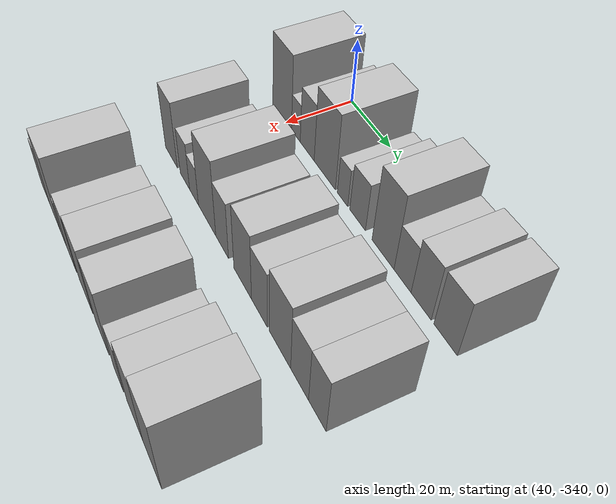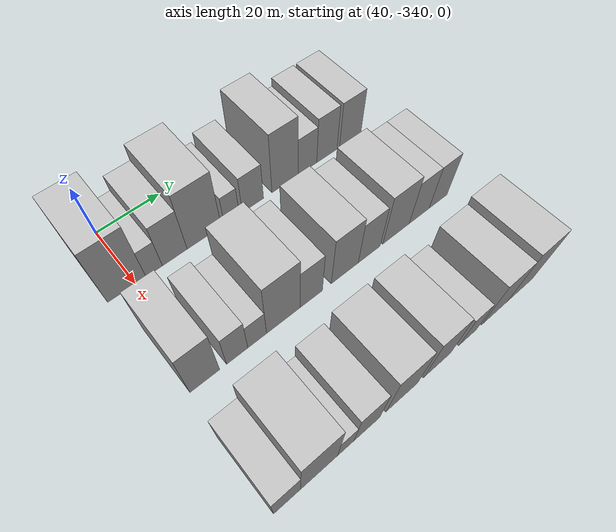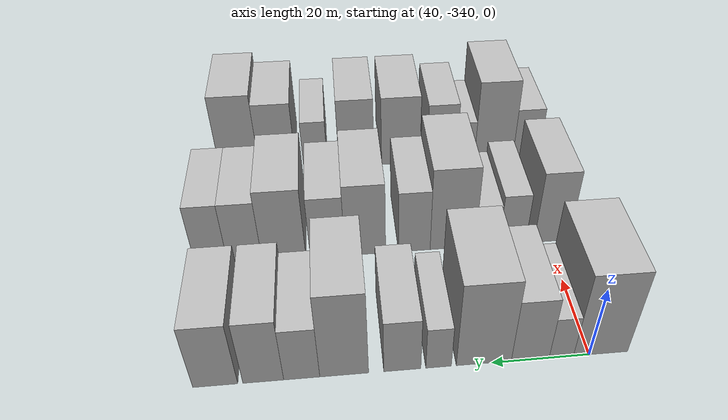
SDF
<sdf version="1.6">
 <world name="default">
  <model name="building_1">
   <static>1</static>
   <pose>50.0000 -342.3890 0 0.000000 0.000000 0.000000</pose>
   <link name="link">
    <pose>0 0 12.00 0 0 0</pose>
    <collision name="collision"><geometry><box><size>20.0000 11.2219 24.0000</size></box></geometry></collision>
    <visual name="visual">
     <cast_shadows>0</cast_shadows>
     <geometry><box><size>20.0000 11.2219 24.0000</size></box></geometry>
     <material>
      <script>
       <uri>model://HANNAS_wall/materials/scripts</uri>
       <uri>model://HANNAS_wall/materials/textures</uri>
       <name>vrc/HANNAS_wall</name>
      </script>
     </material>
    </visual>
   </link>
  </model>
  <model name="building_2">
   <static>1</static>
   <pose>50.0000 -334.2786 0 0.000000 0.000000 0.000000</pose>
   <link name="link">
    <pose>0 0 6.00 0 0 0</pose>
    <collision name="collision"><geometry><box><size>20.0000 4.9989 12.0000</size></box></geometry></collision>
    <visual name="visual">
     <cast_shadows>0</cast_shadows>
     <geometry><box><size>20.0000 4.9989 12.0000</size></box></geometry>
     <material>
      <script>
       <uri>model://HANNAS_wall/materials/scripts</uri>
       <uri>model://HANNAS_wall/materials/textures</uri>
       <name>vrc/HANNAS_wall</name>
      </script>
     </material>
    </visual>
   </link>
  </model>
  <model name="building_3">
   <static>1</static>
   <pose>50.0000 -327.9115 0 0.000000 0.000000 0.000000</pose>
   <link name="link">
    <pose>0 0 9.00 0 0 0</pose>
    <collision name="collision"><geometry><box><size>20.0000 7.7354 18.0000</size></box></geometry></collision>
    <visual name="visual">
     <cast_shadows>0</cast_shadows>
     <geometry><box><size>20.0000 7.7354 18.0000</size></box></geometry>
     <material>
      <script>
       <uri>model://HANNAS_wall/materials/scripts</uri>
       <uri>model://HANNAS_wall/materials/textures</uri>
       <name>vrc/HANNAS_wall</name>
      </script>
     </material>
    </visual>
   </link>
  </model>
  <model name="building_4">
   <static>1</static>
   <pose>50.0000 -318.4822 0 0.000000 0.000000 0.000000</pose>
   <link name="link">
    <pose>0 0 12.00 0 0 0</pose>
    <collision name="collision"><geometry><box><size>20.0000 11.1232 24.0000</size></box></geometry></collision>
    <visual name="visual">
     <cast_shadows>0</cast_shadows>
     <geometry><box><size>20.0000 11.1232 24.0000</size></box></geometry>
     <material>
      <script>
       <uri>model://HANNAS_wall/materials/scripts</uri>
       <uri>model://HANNAS_wall/materials/textures</uri>
       <name>vrc/HANNAS_wall</name>
      </script>
     </material>
    </visual>
   </link>
  </model>
  <model name="building_5">
   <static>1</static>
   <pose>50.0000 -309.3648 0 0.000000 0.000000 0.000000</pose>
   <link name="link">
    <pose>0 0 6.00 0 0 0</pose>
    <collision name="collision"><geometry><box><size>20.0000 5.1116 12.0000</size></box></geometry></collision>
    <visual name="visual">
     <cast_shadows>0</cast_shadows>
     <geometry><box><size>20.0000 5.1116 12.0000</size></box></geometry>
     <material>
      <script>
       <uri>model://HANNAS_wall/materials/scripts</uri>
       <uri>model://HANNAS_wall/materials/textures</uri>
       <name>vrc/HANNAS_wall</name>
      </script>
     </material>
    </visual>
   </link>
  </model>
  <model name="building_6">
   <static>1</static>
   <pose>50.0000 -302.1212 0 0.000000 0.000000 0.000000</pose>
   <link name="link">
    <pose>0 0 7.50 0 0 0</pose>
    <collision name="collision"><geometry><box><size>20.0000 7.3756 15.0000</size></box></geometry></collision>
    <visual name="visual">
     <cast_shadows>0</cast_shadows>
     <geometry><box><size>20.0000 7.3756 15.0000</size></box></geometry>
     <material>
      <script>
       <uri>model://HANNAS_wall/materials/scripts</uri>
       <uri>model://HANNAS_wall/materials/textures</uri>
       <name>vrc/HANNAS_wall</name>
      </script>
     </material>
    </visual>
   </link>
  </model>
  <model name="building_7">
   <static>1</static>
   <pose>50.0000 -290.6306 0 0.000000 0.000000 0.000000</pose>
   <link name="link">
    <pose>0 0 12.00 0 0 0</pose>
    <collision name="collision"><geometry><box><size>20.0000 9.6056 24.0000</size></box></geometry></collision>
    <visual name="visual">
     <cast_shadows>0</cast_shadows>
     <geometry><box><size>20.0000 9.6056 24.0000</size></box></geometry>
     <material>
      <script>
       <uri>model://HANNAS_wall/materials/scripts</uri>
       <uri>model://HANNAS_wall/materials/textures</uri>
       <name>vrc/HANNAS_wall</name>
      </script>
     </material>
    </visual>
   </link>
  </model>
  <model name="building_8">
   <static>1</static>
   <pose>50.0000 -282.3117 0 0.000000 0.000000 0.000000</pose>
   <link name="link">
    <pose>0 0 7.50 0 0 0</pose>
    <collision name="collision"><geometry><box><size>20.0000 7.0321 15.0000</size></box></geometry></collision>
    <visual name="visual">
     <cast_shadows>0</cast_shadows>
     <geometry><box><size>20.0000 7.0321 15.0000</size></box></geometry>
     <material>
      <script>
       <uri>model://HANNAS_wall/materials/scripts</uri>
       <uri>model://HANNAS_wall/materials/textures</uri>
       <name>vrc/HANNAS_wall</name>
      </script>
     </material>
    </visual>
   </link>
  </model>
  <model name="building_9">
   <static>1</static>
   <pose>50.0000 -274.8525 0 0.000000 0.000000 0.000000</pose>
   <link name="link">
    <pose>0 0 9.00 0 0 0</pose>
    <collision name="collision"><geometry><box><size>20.0000 7.8862 18.0000</size></box></geometry></collision>
    <visual name="visual">
     <cast_shadows>0</cast_shadows>
     <geometry><box><size>20.0000 7.8862 18.0000</size></box></geometry>
     <material>
      <script>
       <uri>model://HANNAS_wall/materials/scripts</uri>
       <uri>model://HANNAS_wall/materials/textures</uri>
       <name>vrc/HANNAS_wall</name>
      </script>
     </material>
    </visual>
   </link>
  </model>
  <model name="building_10">
   <static>1</static>
   <pose>50.0000 -265.6022 0 0.000000 0.000000 0.000000</pose>
   <link name="link">
    <pose>0 0 9.00 0 0 0</pose>
    <collision name="collision"><geometry><box><size>20.0000 8.6145 18.0000</size></box></geometry></collision>
    <visual name="visual">
     <cast_shadows>0</cast_shadows>
     <geometry><box><size>20.0000 8.6145 18.0000</size></box></geometry>
     <material>
      <script>
       <uri>model://HANNAS_wall/materials/scripts</uri>
       <uri>model://HANNAS_wall/materials/textures</uri>
       <name>vrc/HANNAS_wall</name>
      </script>
     </material>
    </visual>
   </link>
  </model>
  <model name="building_81">
   <static>1</static>
   <pose>82.0000 -340.7954 0 0.000000 0.000000 0.000000</pose>
   <link name="link">
    <pose>0 0 10.50 0 0 0</pose>
    <collision name="collision"><geometry><box><size>20.0000 8.4092 21.0000</size></box></geometry></collision>
    <visual name="visual">
     <cast_shadows>0</cast_shadows>
     <geometry><box><size>20.0000 8.4092 21.0000</size></box></geometry>
     <material>
      <script>
       <uri>model://HANNAS_wall/materials/scripts</uri>
       <uri>model://HANNAS_wall/materials/textures</uri>
       <name>vrc/HANNAS_wall</name>
      </script>
     </material>
    </visual>
   </link>
  </model>
  <model name="building_82">
   <static>1</static>
   <pose>82.0000 -331.4395 0 0.000000 0.000000 0.000000</pose>
   <link name="link">
    <pose>0 0 7.50 0 0 0</pose>
    <collision name="collision"><geometry><box><size>20.0000 6.3026 15.0000</size></box></geometry></collision>
    <visual name="visual">
     <cast_shadows>0</cast_shadows>
     <geometry><box><size>20.0000 6.3026 15.0000</size></box></geometry>
     <material>
      <script>
       <uri>model://HANNAS_wall/materials/scripts</uri>
       <uri>model://HANNAS_wall/materials/textures</uri>
       <name>vrc/HANNAS_wall</name>
      </script>
     </material>
    </visual>
   </link>
  </model>
  <model name="building_83">
   <static>1</static>
   <pose>82.0000 -325.4299 0 0.000000 0.000000 0.000000</pose>
   <link name="link">
    <pose>0 0 6.00 0 0 0</pose>
    <collision name="collision"><geometry><box><size>20.0000 5.7168 12.0000</size></box></geometry></collision>
    <visual name="visual">
     <cast_shadows>0</cast_shadows>
     <geometry><box><size>20.0000 5.7168 12.0000</size></box></geometry>
     <material>
      <script>
       <uri>model://HANNAS_wall/materials/scripts</uri>
       <uri>model://HANNAS_wall/materials/textures</uri>
       <name>vrc/HANNAS_wall</name>
      </script>
     </material>
    </visual>
   </link>
  </model>
  <model name="building_84">
   <static>1</static>
   <pose>82.0000 -317.2761 0 0.000000 0.000000 0.000000</pose>
   <link name="link">
    <pose>0 0 12.00 0 0 0</pose>
    <collision name="collision"><geometry><box><size>20.0000 10.5909 24.0000</size></box></geometry></collision>
    <visual name="visual">
     <cast_shadows>0</cast_shadows>
     <geometry><box><size>20.0000 10.5909 24.0000</size></box></geometry>
     <material>
      <script>
       <uri>model://HANNAS_wall/materials/scripts</uri>
       <uri>model://HANNAS_wall/materials/textures</uri>
       <name>vrc/HANNAS_wall</name>
      </script>
     </material>
    </visual>
   </link>
  </model>
  <model name="building_85">
   <static>1</static>
   <pose>82.0000 -308.2951 0 0.000000 0.000000 0.000000</pose>
   <link name="link">
    <pose>0 0 9.00 0 0 0</pose>
    <collision name="collision"><geometry><box><size>20.0000 7.3710 18.0000</size></box></geometry></collision>
    <visual name="visual">
     <cast_shadows>0</cast_shadows>
     <geometry><box><size>20.0000 7.3710 18.0000</size></box></geometry>
     <material>
      <script>
       <uri>model://HANNAS_wall/materials/scripts</uri>
       <uri>model://HANNAS_wall/materials/textures</uri>
       <name>vrc/HANNAS_wall</name>
      </script>
     </material>
    </visual>
   </link>
  </model>
  <model name="building_86">
   <static>1</static>
   <pose>82.0000 -296.9072 0 0.000000 0.000000 0.000000</pose>
   <link name="link">
    <pose>0 0 10.50 0 0 0</pose>
    <collision name="collision"><geometry><box><size>20.0000 9.4048 21.0000</size></box></geometry></collision>
    <visual name="visual">
     <cast_shadows>0</cast_shadows>
     <geometry><box><size>20.0000 9.4048 21.0000</size></box></geometry>
     <material>
      <script>
       <uri>model://HANNAS_wall/materials/scripts</uri>
       <uri>model://HANNAS_wall/materials/textures</uri>
       <name>vrc/HANNAS_wall</name>
      </script>
     </material>
    </visual>
   </link>
  </model>
  <model name="building_87">
   <static>1</static>
   <pose>82.0000 -288.2437 0 0.000000 0.000000 0.000000</pose>
   <link name="link">
    <pose>0 0 9.00 0 0 0</pose>
    <collision name="collision"><geometry><box><size>20.0000 7.9222 18.0000</size></box></geometry></collision>
    <visual name="visual">
     <cast_shadows>0</cast_shadows>
     <geometry><box><size>20.0000 7.9222 18.0000</size></box></geometry>
     <material>
      <script>
       <uri>model://HANNAS_wall/materials/scripts</uri>
       <uri>model://HANNAS_wall/materials/textures</uri>
       <name>vrc/HANNAS_wall</name>
      </script>
     </material>
    </visual>
   </link>
  </model>
  <model name="building_88">
   <static>1</static>
   <pose>82.0000 -278.2958 0 0.000000 0.000000 0.000000</pose>
   <link name="link">
    <pose>0 0 10.50 0 0 0</pose>
    <collision name="collision"><geometry><box><size>20.0000 9.9735 21.0000</size></box></geometry></collision>
    <visual name="visual">
     <cast_shadows>0</cast_shadows>
     <geometry><box><size>20.0000 9.9735 21.0000</size></box></geometry>
     <material>
      <script>
       <uri>model://HANNAS_wall/materials/scripts</uri>
       <uri>model://HANNAS_wall/materials/textures</uri>
       <name>vrc/HANNAS_wall</name>
      </script>
     </material>
    </visual>
   </link>
  </model>
  <model name="building_89">
   <static>1</static>
   <pose>82.0000 -269.4172 0 0.000000 0.000000 0.000000</pose>
   <link name="link">
    <pose>0 0 9.00 0 0 0</pose>
    <collision name="collision"><geometry><box><size>20.0000 7.7837 18.0000</size></box></geometry></collision>
    <visual name="visual">
     <cast_shadows>0</cast_shadows>
     <geometry><box><size>20.0000 7.7837 18.0000</size></box></geometry>
     <material>
      <script>
       <uri>model://HANNAS_wall/materials/scripts</uri>
       <uri>model://HANNAS_wall/materials/textures</uri>
       <name>vrc/HANNAS_wall</name>
      </script>
     </material>
    </visual>
   </link>
  </model>
  <model name="building_90">
   <static>1</static>
   <pose>82.0000 -261.8972 0 0.000000 0.000000 0.000000</pose>
   <link name="link">
    <pose>0 0 9.00 0 0 0</pose>
    <collision name="collision"><geometry><box><size>20.0000 7.2563 18.0000</size></box></geometry></collision>
    <visual name="visual">
     <cast_shadows>0</cast_shadows>
     <geometry><box><size>20.0000 7.2563 18.0000</size></box></geometry>
     <material>
      <script>
       <uri>model://HANNAS_wall/materials/scripts</uri>
       <uri>model://HANNAS_wall/materials/textures</uri>
       <name>vrc/HANNAS_wall</name>
      </script>
     </material>
    </visual>
   </link>
  </model>
  <model name="building_157">
   <static>1</static>
   <pose>114.0000 -342.3721 0 0.000000 0.000000 0.000000</pose>
   <link name="link">
    <pose>0 0 7.50 0 0 0</pose>
    <collision name="collision"><geometry><box><size>20.0000 7.2557 15.0000</size></box></geometry></collision>
    <visual name="visual">
     <cast_shadows>0</cast_shadows>
     <geometry><box><size>20.0000 7.2557 15.0000</size></box></geometry>
     <material>
      <script>
       <uri>model://HANNAS_wall/materials/scripts</uri>
       <uri>model://HANNAS_wall/materials/textures</uri>
       <name>vrc/HANNAS_wall</name>
      </script>
     </material>
    </visual>
   </link>
  </model>
  <model name="building_158">
   <static>1</static>
   <pose>114.0000 -333.5051 0 0.000000 0.000000 0.000000</pose>
   <link name="link">
    <pose>0 0 12.00 0 0 0</pose>
    <collision name="collision"><geometry><box><size>20.0000 10.4784 24.0000</size></box></geometry></collision>
    <visual name="visual">
     <cast_shadows>0</cast_shadows>
     <geometry><box><size>20.0000 10.4784 24.0000</size></box></geometry>
     <material>
      <script>
       <uri>model://HANNAS_wall/materials/scripts</uri>
       <uri>model://HANNAS_wall/materials/textures</uri>
       <name>vrc/HANNAS_wall</name>
      </script>
     </material>
    </visual>
   </link>
  </model>
  <model name="building_159">
   <static>1</static>
   <pose>114.0000 -325.8617 0 0.000000 0.000000 0.000000</pose>
   <link name="link">
    <pose>0 0 6.00 0 0 0</pose>
    <collision name="collision"><geometry><box><size>20.0000 4.8084 12.0000</size></box></geometry></collision>
    <visual name="visual">
     <cast_shadows>0</cast_shadows>
     <geometry><box><size>20.0000 4.8084 12.0000</size></box></geometry>
     <material>
      <script>
       <uri>model://HANNAS_wall/materials/scripts</uri>
       <uri>model://HANNAS_wall/materials/textures</uri>
       <name>vrc/HANNAS_wall</name>
      </script>
     </material>
    </visual>
   </link>
  </model>
  <model name="building_160">
   <static>1</static>
   <pose>114.0000 -319.4997 0 0.000000 0.000000 0.000000</pose>
   <link name="link">
    <pose>0 0 9.00 0 0 0</pose>
    <collision name="collision"><geometry><box><size>20.0000 7.9158 18.0000</size></box></geometry></collision>
    <visual name="visual">
     <cast_shadows>0</cast_shadows>
     <geometry><box><size>20.0000 7.9158 18.0000</size></box></geometry>
     <material>
      <script>
       <uri>model://HANNAS_wall/materials/scripts</uri>
       <uri>model://HANNAS_wall/materials/textures</uri>
       <name>vrc/HANNAS_wall</name>
      </script>
     </material>
    </visual>
   </link>
  </model>
  <model name="building_161">
   <static>1</static>
   <pose>114.0000 -308.4448 0 0.000000 0.000000 0.000000</pose>
   <link name="link">
    <pose>0 0 10.50 0 0 0</pose>
    <collision name="collision"><geometry><box><size>20.0000 10.1939 21.0000</size></box></geometry></collision>
    <visual name="visual">
     <cast_shadows>0</cast_shadows>
     <geometry><box><size>20.0000 10.1939 21.0000</size></box></geometry>
     <material>
      <script>
       <uri>model://HANNAS_wall/materials/scripts</uri>
       <uri>model://HANNAS_wall/materials/textures</uri>
       <name>vrc/HANNAS_wall</name>
      </script>
     </material>
    </visual>
   </link>
  </model>
  <model name="building_162">
   <static>1</static>
   <pose>114.0000 -296.7150 0 0.000000 0.000000 0.000000</pose>
   <link name="link">
    <pose>0 0 10.50 0 0 0</pose>
    <collision name="collision"><geometry><box><size>20.0000 9.2657 21.0000</size></box></geometry></collision>
    <visual name="visual">
     <cast_shadows>0</cast_shadows>
     <geometry><box><size>20.0000 9.2657 21.0000</size></box></geometry>
     <material>
      <script>
       <uri>model://HANNAS_wall/materials/scripts</uri>
       <uri>model://HANNAS_wall/materials/textures</uri>
       <name>vrc/HANNAS_wall</name>
      </script>
     </material>
    </visual>
   </link>
  </model>
  <model name="building_163">
   <static>1</static>
   <pose>114.0000 -285.9590 0 0.000000 0.000000 0.000000</pose>
   <link name="link">
    <pose>0 0 7.50 0 0 0</pose>
    <collision name="collision"><geometry><box><size>20.0000 6.2463 15.0000</size></box></geometry></collision>
    <visual name="visual">
     <cast_shadows>0</cast_shadows>
     <geometry><box><size>20.0000 6.2463 15.0000</size></box></geometry>
     <material>
      <script>
       <uri>model://HANNAS_wall/materials/scripts</uri>
       <uri>model://HANNAS_wall/materials/textures</uri>
       <name>vrc/HANNAS_wall</name>
      </script>
     </material>
    </visual>
   </link>
  </model>
  <model name="building_164">
   <static>1</static>
   <pose>114.0000 -276.0854 0 0.000000 0.000000 0.000000</pose>
   <link name="link">
    <pose>0 0 10.50 0 0 0</pose>
    <collision name="collision"><geometry><box><size>20.0000 9.5008 21.0000</size></box></geometry></collision>
    <visual name="visual">
     <cast_shadows>0</cast_shadows>
     <geometry><box><size>20.0000 9.5008 21.0000</size></box></geometry>
     <material>
      <script>
       <uri>model://HANNAS_wall/materials/scripts</uri>
       <uri>model://HANNAS_wall/materials/textures</uri>
       <name>vrc/HANNAS_wall</name>
      </script>
     </material>
    </visual>
   </link>
  </model>
  <model name="building_165">
   <static>1</static>
   <pose>114.0000 -266.2824 0 0.000000 0.000000 0.000000</pose>
   <link name="link">
    <pose>0 0 12.00 0 0 0</pose>
    <collision name="collision"><geometry><box><size>20.0000 10.1050 24.0000</size></box></geometry></collision>
    <visual name="visual">
     <cast_shadows>0</cast_shadows>
     <geometry><box><size>20.0000 10.1050 24.0000</size></box></geometry>
     <material>
      <script>
       <uri>model://HANNAS_wall/materials/scripts</uri>
       <uri>model://HANNAS_wall/materials/textures</uri>
       <name>vrc/HANNAS_wall</name>
      </script>
     </material>
    </visual>
   </link>
  </model>
 </world>
</sdf>
